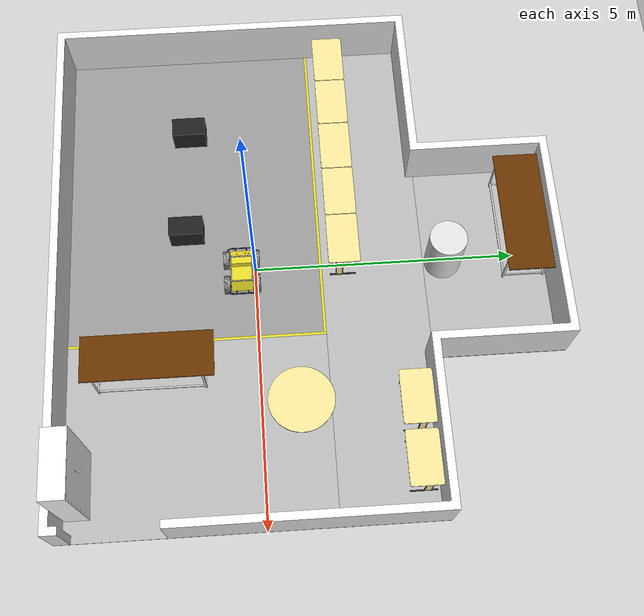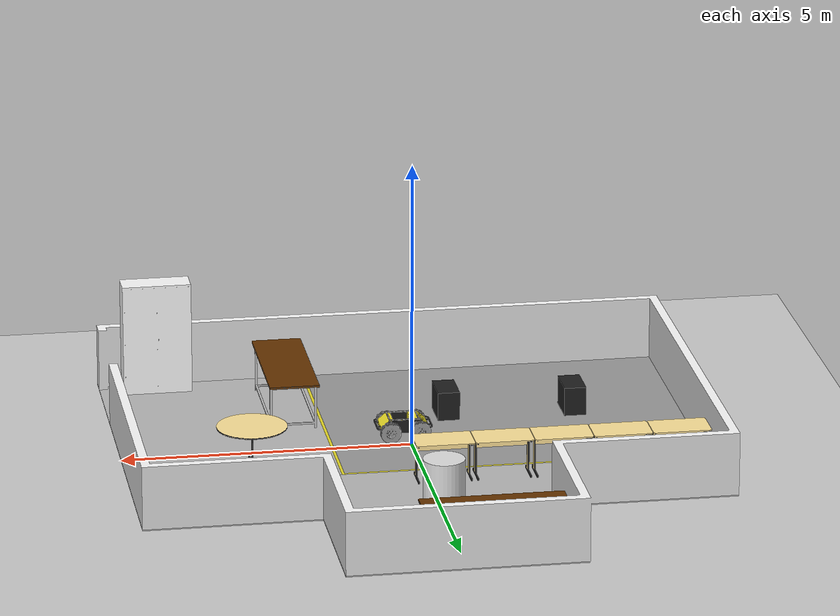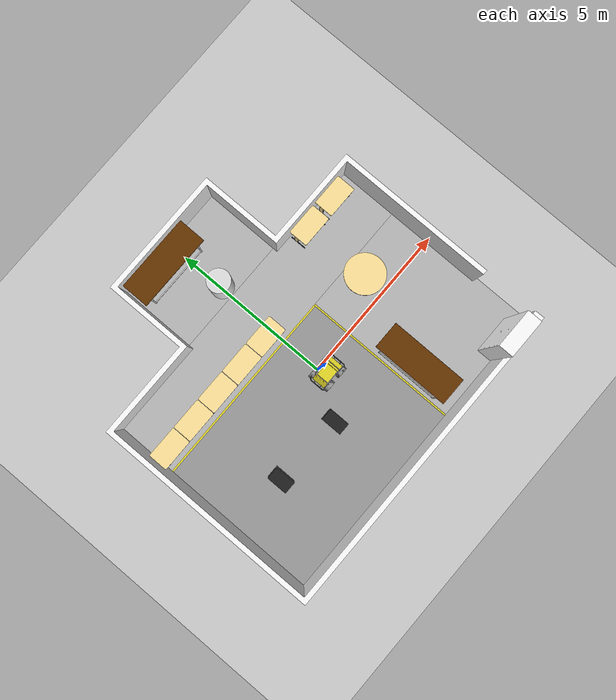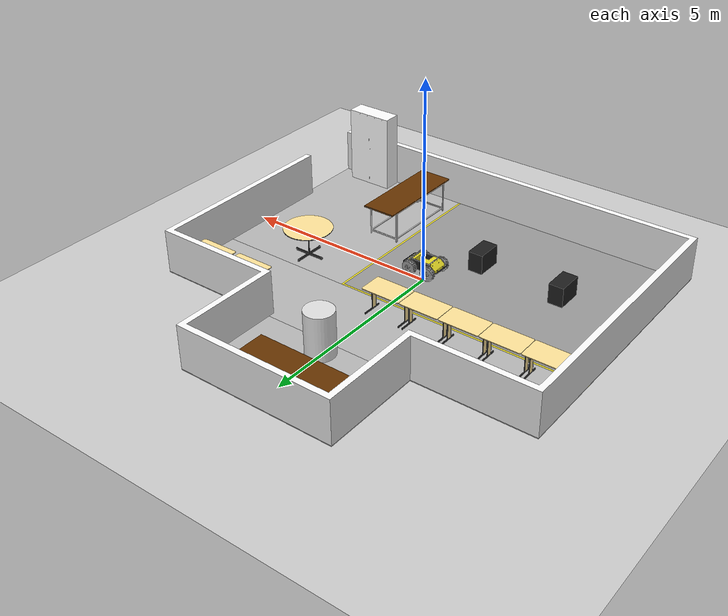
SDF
<sdf version="1.7">
 <world name="default">
  <light name="sun" type="directional">
   <cast_shadows>0</cast_shadows>
   <pose>0 0 10 0 -0 0</pose>
   <diffuse>0.8 0.8 0.8 1</diffuse>
   <specular>0.1 0.1 0.1 1</specular>
   <attenuation>
    <range>1000</range>
    <constant>0.9</constant>
    <linear>0.01</linear>
    <quadratic>0.001</quadratic>
   </attenuation>
   <direction>-0.5 0.5 -1</direction>
   <spot><inner_angle>0</inner_angle><outer_angle>0</outer_angle><falloff>0</falloff></spot>
  </light>
  <model name="ground_plane">
   <static>1</static>
   <link name="link">
    <collision name="collision">
     <geometry><plane><normal>0 0 1</normal><size>100 100</size></plane></geometry>
     <surface><friction><ode><mu>100</mu><mu2>50</mu2></ode></friction></surface>
    </collision>
    <visual name="visual">
     <cast_shadows>0</cast_shadows>
     <geometry><plane><normal>0 0 1</normal><size>100 100</size></plane></geometry>
     <material>
      <script><uri>file://media/materials/scripts/gazebo.material</uri><name>Gazebo/Grey</name></script>
     </material>
    </visual>
   </link>
  </model>
  <gravity>0 0 -9.8</gravity>
  <magnetic_field>6e-06 2.3e-05 -4.2e-05</magnetic_field>
  <atmosphere type="adiabatic"/>
  <physics name="default_physics" default="0" type="ode">
   <max_step_size>0.01</max_step_size>
   <real_time_factor>1</real_time_factor>
   <real_time_update_rate>100</real_time_update_rate>
  </physics>
  <scene><ambient>0.4 0.4 0.4 1</ambient><background>0.7 0.7 0.7 1</background><shadows>0</shadows></scene>
  <spherical_coordinates>
   <surface_model>EARTH_WGS84</surface_model>
   <latitude_deg>0</latitude_deg>
   <longitude_deg>0</longitude_deg>
   <elevation>0</elevation>
   <heading_deg>0</heading_deg>
  </spherical_coordinates>
  <model name="lar_floor">
   <pose>0 -0.25 0 0 -0 0</pose>
   <frame name="floor::__model__" attached_to="floor::floor">
    <pose relative_to="__model__">0 0 0 0 -0 0</pose>
   </frame>
   <link name="floor::floor">
    <pose relative_to="floor::__model__">0 0 0 0 -0 0</pose>
    <visual name="visual_1">
     <pose>3.2 -0.985 0.01 0 -0 0</pose>
     <geometry><box><size>3.6 5.03 0.02</size></box></geometry>
     <material>
      <script>
       <uri>model://lar_floor/materials/scripts/lar_floor.material</uri>
       <name>lar_floor/visual_1</name>
      </script>
     </material>
     <cast_shadows>0</cast_shadows>
    </visual>
    <visual name="visual_2">
     <pose>0 4.75 0.01 0 -0 0</pose>
     <geometry><box><size>4 2.5 0.02</size></box></geometry>
     <material>
      <script>
       <uri>model://lar_floor/materials/scripts/lar_floor.material</uri>
       <name>lar_floor/visual_2</name>
      </script>
     </material>
     <cast_shadows>0</cast_shadows>
    </visual>
    <visual name="visual_3">
     <pose>-1.825 -1.01 0.01 0 -0 0</pose>
     <geometry><box><size>6.35 4.98 0.02</size></box></geometry>
     <material>
      <script><uri>file://media/materials/scripts/gazebo.material</uri><name>Gazebo/Grey</name></script>
     </material>
     <cast_shadows>0</cast_shadows>
    </visual>
    <visual name="visual_4">
     <pose>1.375 -0.985 0.01 0 -0 0</pose>
     <geometry><box><size>0.05 5.03 0.02</size></box></geometry>
     <material>
      <script><uri>file://media/materials/scripts/gazebo.material</uri><name>Gazebo/DarkYellow</name></script>
     </material>
     <cast_shadows>0</cast_shadows>
    </visual>
    <visual name="visual_5">
     <pose>-1.825 1.505 0.01 0 -0 0</pose>
     <geometry><box><size>6.35 0.05 0.02</size></box></geometry>
     <material>
      <script><uri>file://media/materials/scripts/gazebo.material</uri><name>Gazebo/DarkYellow</name></script>
     </material>
     <cast_shadows>0</cast_shadows>
    </visual>
    <visual name="visual_6">
     <pose>0 2.515 0.01 0 -0 0</pose>
     <geometry><box><size>10 1.97 0.02</size></box></geometry>
     <material>
      <script>
       <uri>model://lar_floor/materials/scripts/lar_floor.material</uri>
       <name>lar_floor/visual_6</name>
      </script>
     </material>
     <cast_shadows>0</cast_shadows>
    </visual>
    <collision name="collision_1">
     <pose>0 0 0.01 0 -0 0</pose>
     <geometry><box><size>10 7 0.1</size></box></geometry>
    </collision>
    <collision name="collision_2">
     <pose>0 4.75 0.01 0 -0 0</pose>
     <geometry><box><size>4 2.5 0.1</size></box></geometry>
    </collision>
   </link>
   <static>1</static>
  </model>
  <model name="lar_walls">
   <pose>0 1 0 0 -0 0</pose>
   <frame name="walls::__model__" attached_to="walls::walls">
    <pose relative_to="__model__">0 0 0 0 -0 0</pose>
   </frame>
   <link name="walls::walls">
    <pose relative_to="walls::__model__">0 0 1.52 0 -0 0</pose>
    <inertial>
     <inertia><ixx>1</ixx><ixy>0</ixy><ixz>0</ixz><iyy>1</iyy><iyz>0</iyz><izz>1</izz></inertia>
     <mass>2000</mass>
    </inertial>
    <visual name="visual">
     <geometry><mesh><uri>model://lar_walls/meshes/lar_walls.dae</uri></mesh></geometry>
     <cast_shadows>0</cast_shadows>
     <material><shader type="vertex"><normal_map>__default__</normal_map></shader></material>
    </visual>
    <collision name="collisions">
     <geometry><mesh><uri>model://lar_walls/meshes/lar_walls.dae</uri></mesh></geometry>
     <surface>
      <friction>
       <ode><mu>1</mu><mu2>1</mu2><fdir1>0 0 0</fdir1><slip1>0</slip1><slip2>0</slip2></ode>
       <torsional>
        <coefficient>1</coefficient>
        <patch_radius>0</patch_radius>
        <surface_radius>0</surface_radius>
        <use_patch_radius>1</use_patch_radius>
        <ode><slip>0</slip></ode>
       </torsional>
      </friction>
      <bounce><restitution_coefficient>0</restitution_coefficient><threshold>1e+06</threshold></bounce>
      <contact>
       <collide_without_contact>0</collide_without_contact>
       <collide_without_contact_bitmask>1</collide_without_contact_bitmask>
       <collide_bitmask>1</collide_bitmask>
       <ode>
        <soft_cfm>0</soft_cfm>
        <soft_erp>0.2</soft_erp>
        <kp>1e+13</kp>
        <kd>1</kd>
        <max_vel>0.01</max_vel>
        <min_depth>0</min_depth>
       </ode>
       <bullet>
        <split_impulse>1</split_impulse>
        <split_impulse_penetration_threshold>-0.01</split_impulse_penetration_threshold>
        <soft_cfm>0</soft_cfm>
        <soft_erp>0.2</soft_erp>
        <kp>1e+13</kp>
        <kd>1</kd>
       </bullet>
      </contact>
     </surface>
    </collision>
   </link>
   <static>1</static>
  </model>
  <model name="lar_shelf">
   <pose>4 -3.35 0 0 -0 1.57068</pose>
   <frame name="shelf::__model__" attached_to="shelf::shelf">
    <pose relative_to="__model__">0 0 0 0 -0 0</pose>
   </frame>
   <link name="shelf::shelf">
    <pose relative_to="shelf::__model__">0 0 1.01 0 -0 0</pose>
    <inertial>
     <inertia><ixx>1</ixx><ixy>0</ixy><ixz>0</ixz><iyy>1</iyy><iyz>0</iyz><izz>1</izz></inertia>
     <mass>20</mass>
    </inertial>
    <visual name="visual">
     <geometry><mesh><uri>model://lar_shelf/meshes/lar_shelf.dae</uri></mesh></geometry>
     <cast_shadows>0</cast_shadows>
     <material>
      <lighting>1</lighting>
      <ambient>1 1 1 1</ambient>
      <diffuse>1 1 1 1</diffuse>
      <specular>1 1 1 1</specular>
      <emissive>0 0 0 1</emissive>
      <shader type="vertex"><normal_map>__default__</normal_map></shader>
     </material>
    </visual>
    <collision name="collisions">
     <geometry><box><size>0.454 1.2 1.98</size></box></geometry>
     <surface>
      <friction>
       <ode><mu>1</mu><mu2>1</mu2><fdir1>0 0 0</fdir1><slip1>0</slip1><slip2>0</slip2></ode>
       <torsional>
        <coefficient>1</coefficient>
        <patch_radius>0</patch_radius>
        <surface_radius>0</surface_radius>
        <use_patch_radius>1</use_patch_radius>
        <ode><slip>0</slip></ode>
       </torsional>
      </friction>
      <bounce><restitution_coefficient>0</restitution_coefficient><threshold>1e+06</threshold></bounce>
      <contact>
       <collide_without_contact>0</collide_without_contact>
       <collide_without_contact_bitmask>1</collide_without_contact_bitmask>
       <collide_bitmask>1</collide_bitmask>
       <ode>
        <soft_cfm>0</soft_cfm>
        <soft_erp>0.2</soft_erp>
        <kp>1e+13</kp>
        <kd>1</kd>
        <max_vel>0.01</max_vel>
        <min_depth>0</min_depth>
       </ode>
       <bullet>
        <split_impulse>1</split_impulse>
        <split_impulse_penetration_threshold>-0.01</split_impulse_penetration_threshold>
        <soft_cfm>0</soft_cfm>
        <soft_erp>0.2</soft_erp>
        <kp>1e+13</kp>
        <kd>1</kd>
       </bullet>
      </contact>
     </surface>
    </collision>
   </link>
   <static>1</static>
  </model>
  <model name="lar_table_great_0">
   <pose>1.9 -2 0 0 -0 0</pose>
   <frame name="great_table_0::__model__" attached_to="great_table_0::great_table">
    <pose relative_to="__model__">0 0 0 0 -0 0</pose>
   </frame>
   <link name="great_table_0::great_table">
    <pose relative_to="great_table_0::__model__">0 0 0.445 0 -0 0</pose>
    <inertial>
     <inertia><ixx>1</ixx><ixy>0</ixy><ixz>0</ixz><iyy>1</iyy><iyz>0</iyz><izz>1</izz></inertia>
     <mass>25</mass>
    </inertial>
    <visual name="visual">
     <geometry><mesh><uri>model://lar_table_great/meshes/lar_table_great.dae</uri></mesh></geometry>
     <cast_shadows>0</cast_shadows>
     <material><shader type="vertex"><normal_map>__default__</normal_map></shader></material>
    </visual>
    <collision name="collisions">
     <geometry><mesh><uri>model://lar_table_great/meshes/lar_table_great.dae</uri></mesh></geometry>
     <surface>
      <friction>
       <ode><mu>1</mu><mu2>1</mu2><fdir1>0 0 0</fdir1><slip1>0</slip1><slip2>0</slip2></ode>
       <torsional>
        <coefficient>1</coefficient>
        <patch_radius>0</patch_radius>
        <surface_radius>0</surface_radius>
        <use_patch_radius>1</use_patch_radius>
        <ode><slip>0</slip></ode>
       </torsional>
      </friction>
      <bounce><restitution_coefficient>0</restitution_coefficient><threshold>1e+06</threshold></bounce>
      <contact>
       <collide_without_contact>0</collide_without_contact>
       <collide_without_contact_bitmask>1</collide_without_contact_bitmask>
       <collide_bitmask>1</collide_bitmask>
       <ode>
        <soft_cfm>0</soft_cfm>
        <soft_erp>0.2</soft_erp>
        <kp>1e+13</kp>
        <kd>1</kd>
        <max_vel>0.01</max_vel>
        <min_depth>0</min_depth>
       </ode>
       <bullet>
        <split_impulse>1</split_impulse>
        <split_impulse_penetration_threshold>-0.01</split_impulse_penetration_threshold>
        <soft_cfm>0</soft_cfm>
        <soft_erp>0.2</soft_erp>
        <kp>1e+13</kp>
        <kd>1</kd>
       </bullet>
      </contact>
     </surface>
    </collision>
   </link>
   <static>1</static>
  </model>
  <model name="lar_table_great_1">
   <pose>-0.55 5.15 0 0 -0 1.5708</pose>
   <frame name="great_table_1::__model__" attached_to="great_table_1::great_table">
    <pose relative_to="__model__">0 0 0 0 -0 0</pose>
   </frame>
   <link name="great_table_1::great_table">
    <pose relative_to="great_table_1::__model__">0 0 0.445 0 -0 0</pose>
    <inertial>
     <inertia><ixx>1</ixx><ixy>0</ixy><ixz>0</ixz><iyy>1</iyy><iyz>0</iyz><izz>1</izz></inertia>
     <mass>25</mass>
    </inertial>
    <visual name="visual">
     <geometry><mesh><uri>model://lar_table_great/meshes/lar_table_great.dae</uri></mesh></geometry>
     <cast_shadows>0</cast_shadows>
     <material><shader type="vertex"><normal_map>__default__</normal_map></shader></material>
    </visual>
    <collision name="collisions">
     <geometry><mesh><uri>model://lar_table_great/meshes/lar_table_great.dae</uri></mesh></geometry>
     <surface>
      <friction>
       <ode><mu>1</mu><mu2>1</mu2><fdir1>0 0 0</fdir1><slip1>0</slip1><slip2>0</slip2></ode>
       <torsional>
        <coefficient>1</coefficient>
        <patch_radius>0</patch_radius>
        <surface_radius>0</surface_radius>
        <use_patch_radius>1</use_patch_radius>
        <ode><slip>0</slip></ode>
       </torsional>
      </friction>
      <bounce><restitution_coefficient>0</restitution_coefficient><threshold>1e+06</threshold></bounce>
      <contact>
       <collide_without_contact>0</collide_without_contact>
       <collide_without_contact_bitmask>1</collide_without_contact_bitmask>
       <collide_bitmask>1</collide_bitmask>
       <ode>
        <soft_cfm>0</soft_cfm>
        <soft_erp>0.2</soft_erp>
        <kp>1e+13</kp>
        <kd>1</kd>
        <max_vel>0.01</max_vel>
        <min_depth>0</min_depth>
       </ode>
       <bullet>
        <split_impulse>1</split_impulse>
        <split_impulse_penetration_threshold>-0.01</split_impulse_penetration_threshold>
        <soft_cfm>0</soft_cfm>
        <soft_erp>0.2</soft_erp>
        <kp>1e+13</kp>
        <kd>1</kd>
       </bullet>
      </contact>
     </surface>
    </collision>
   </link>
   <static>1</static>
  </model>
  <model name="lar_table_pc_0">
   <pose>-4.3 1.68 0 0 -0 0</pose>
   <frame name="pc_table_0::__model__" attached_to="pc_table_0::pc_table">
    <pose relative_to="__model__">0 0 0 0 -0 0</pose>
   </frame>
   <link name="pc_table_0::pc_table">
    <pose relative_to="pc_table_0::__model__">0 0 0.37 0 -0 0</pose>
    <inertial>
     <inertia><ixx>1</ixx><ixy>0</ixy><ixz>0</ixz><iyy>1</iyy><iyz>0</iyz><izz>1</izz></inertia>
     <mass>12</mass>
    </inertial>
    <visual name="visual">
     <geometry><mesh><uri>model://lar_table_pc/meshes/lar_table_pc.dae</uri></mesh></geometry>
     <cast_shadows>0</cast_shadows>
     <material><shader type="vertex"><normal_map>__default__</normal_map></shader></material>
    </visual>
    <collision name="collisions">
     <geometry><mesh><uri>model://lar_table_pc/meshes/lar_table_pc.dae</uri></mesh></geometry>
     <surface>
      <friction>
       <ode><mu>1</mu><mu2>1</mu2><fdir1>0 0 0</fdir1><slip1>0</slip1><slip2>0</slip2></ode>
       <torsional>
        <coefficient>1</coefficient>
        <patch_radius>0</patch_radius>
        <surface_radius>0</surface_radius>
        <use_patch_radius>1</use_patch_radius>
        <ode><slip>0</slip></ode>
       </torsional>
      </friction>
      <bounce><restitution_coefficient>0</restitution_coefficient><threshold>1e+06</threshold></bounce>
      <contact>
       <collide_without_contact>0</collide_without_contact>
       <collide_without_contact_bitmask>1</collide_without_contact_bitmask>
       <collide_bitmask>1</collide_bitmask>
       <ode>
        <soft_cfm>0</soft_cfm>
        <soft_erp>0.2</soft_erp>
        <kp>1e+13</kp>
        <kd>1</kd>
        <max_vel>0.01</max_vel>
        <min_depth>0</min_depth>
       </ode>
       <bullet>
        <split_impulse>1</split_impulse>
        <split_impulse_penetration_threshold>-0.01</split_impulse_penetration_threshold>
        <soft_cfm>0</soft_cfm>
        <soft_erp>0.2</soft_erp>
        <kp>1e+13</kp>
        <kd>1</kd>
       </bullet>
      </contact>
     </surface>
    </collision>
   </link>
   <static>1</static>
  </model>
  <model name="lar_table_pc_1">
   <pose>-3.29 1.68 0 0 -0 0</pose>
   <frame name="pc_table_1::__model__" attached_to="pc_table_1::pc_table">
    <pose relative_to="__model__">0 0 0 0 -0 0</pose>
   </frame>
   <link name="pc_table_1::pc_table">
    <pose relative_to="pc_table_1::__model__">0 0 0.37 0 -0 0</pose>
    <inertial>
     <inertia><ixx>1</ixx><ixy>0</ixy><ixz>0</ixz><iyy>1</iyy><iyz>0</iyz><izz>1</izz></inertia>
     <mass>12</mass>
    </inertial>
    <visual name="visual">
     <geometry><mesh><uri>model://lar_table_pc/meshes/lar_table_pc.dae</uri></mesh></geometry>
     <cast_shadows>0</cast_shadows>
     <material><shader type="vertex"><normal_map>__default__</normal_map></shader></material>
    </visual>
    <collision name="collisions">
     <geometry><mesh><uri>model://lar_table_pc/meshes/lar_table_pc.dae</uri></mesh></geometry>
     <surface>
      <friction>
       <ode><mu>1</mu><mu2>1</mu2><fdir1>0 0 0</fdir1><slip1>0</slip1><slip2>0</slip2></ode>
       <torsional>
        <coefficient>1</coefficient>
        <patch_radius>0</patch_radius>
        <surface_radius>0</surface_radius>
        <use_patch_radius>1</use_patch_radius>
        <ode><slip>0</slip></ode>
       </torsional>
      </friction>
      <bounce><restitution_coefficient>0</restitution_coefficient><threshold>1e+06</threshold></bounce>
      <contact>
       <collide_without_contact>0</collide_without_contact>
       <collide_without_contact_bitmask>1</collide_without_contact_bitmask>
       <collide_bitmask>1</collide_bitmask>
       <ode>
        <soft_cfm>0</soft_cfm>
        <soft_erp>0.2</soft_erp>
        <kp>1e+13</kp>
        <kd>1</kd>
        <max_vel>0.01</max_vel>
        <min_depth>0</min_depth>
       </ode>
       <bullet>
        <split_impulse>1</split_impulse>
        <split_impulse_penetration_threshold>-0.01</split_impulse_penetration_threshold>
        <soft_cfm>0</soft_cfm>
        <soft_erp>0.2</soft_erp>
        <kp>1e+13</kp>
        <kd>1</kd>
       </bullet>
      </contact>
     </surface>
    </collision>
   </link>
   <static>1</static>
  </model>
  <model name="lar_table_pc_2">
   <pose>-2.28 1.68 0 0 -0 0</pose>
   <frame name="pc_table_2::__model__" attached_to="pc_table_2::pc_table">
    <pose relative_to="__model__">0 0 0 0 -0 0</pose>
   </frame>
   <link name="pc_table_2::pc_table">
    <pose relative_to="pc_table_2::__model__">0 0 0.37 0 -0 0</pose>
    <inertial>
     <inertia><ixx>1</ixx><ixy>0</ixy><ixz>0</ixz><iyy>1</iyy><iyz>0</iyz><izz>1</izz></inertia>
     <mass>12</mass>
    </inertial>
    <visual name="visual">
     <geometry><mesh><uri>model://lar_table_pc/meshes/lar_table_pc.dae</uri></mesh></geometry>
     <cast_shadows>0</cast_shadows>
     <material><shader type="vertex"><normal_map>__default__</normal_map></shader></material>
    </visual>
    <collision name="collisions">
     <geometry><mesh><uri>model://lar_table_pc/meshes/lar_table_pc.dae</uri></mesh></geometry>
     <surface>
      <friction>
       <ode><mu>1</mu><mu2>1</mu2><fdir1>0 0 0</fdir1><slip1>0</slip1><slip2>0</slip2></ode>
       <torsional>
        <coefficient>1</coefficient>
        <patch_radius>0</patch_radius>
        <surface_radius>0</surface_radius>
        <use_patch_radius>1</use_patch_radius>
        <ode><slip>0</slip></ode>
       </torsional>
      </friction>
      <bounce><restitution_coefficient>0</restitution_coefficient><threshold>1e+06</threshold></bounce>
      <contact>
       <collide_without_contact>0</collide_without_contact>
       <collide_without_contact_bitmask>1</collide_without_contact_bitmask>
       <collide_bitmask>1</collide_bitmask>
       <ode>
        <soft_cfm>0</soft_cfm>
        <soft_erp>0.2</soft_erp>
        <kp>1e+13</kp>
        <kd>1</kd>
        <max_vel>0.01</max_vel>
        <min_depth>0</min_depth>
       </ode>
       <bullet>
        <split_impulse>1</split_impulse>
        <split_impulse_penetration_threshold>-0.01</split_impulse_penetration_threshold>
        <soft_cfm>0</soft_cfm>
        <soft_erp>0.2</soft_erp>
        <kp>1e+13</kp>
        <kd>1</kd>
       </bullet>
      </contact>
     </surface>
    </collision>
   </link>
   <static>1</static>
  </model>
  <model name="lar_table_pc_3">
   <pose>-1.27 1.68 0 0 -0 0</pose>
   <frame name="pc_table_3::__model__" attached_to="pc_table_3::pc_table">
    <pose relative_to="__model__">0 0 0 0 -0 0</pose>
   </frame>
   <link name="pc_table_3::pc_table">
    <pose relative_to="pc_table_3::__model__">0 0 0.37 0 -0 0</pose>
    <inertial>
     <inertia><ixx>1</ixx><ixy>0</ixy><ixz>0</ixz><iyy>1</iyy><iyz>0</iyz><izz>1</izz></inertia>
     <mass>12</mass>
    </inertial>
    <visual name="visual">
     <geometry><mesh><uri>model://lar_table_pc/meshes/lar_table_pc.dae</uri></mesh></geometry>
     <cast_shadows>0</cast_shadows>
     <material><shader type="vertex"><normal_map>__default__</normal_map></shader></material>
    </visual>
    <collision name="collisions">
     <geometry><mesh><uri>model://lar_table_pc/meshes/lar_table_pc.dae</uri></mesh></geometry>
     <surface>
      <friction>
       <ode><mu>1</mu><mu2>1</mu2><fdir1>0 0 0</fdir1><slip1>0</slip1><slip2>0</slip2></ode>
       <torsional>
        <coefficient>1</coefficient>
        <patch_radius>0</patch_radius>
        <surface_radius>0</surface_radius>
        <use_patch_radius>1</use_patch_radius>
        <ode><slip>0</slip></ode>
       </torsional>
      </friction>
      <bounce><restitution_coefficient>0</restitution_coefficient><threshold>1e+06</threshold></bounce>
      <contact>
       <collide_without_contact>0</collide_without_contact>
       <collide_without_contact_bitmask>1</collide_without_contact_bitmask>
       <collide_bitmask>1</collide_bitmask>
       <ode>
        <soft_cfm>0</soft_cfm>
        <soft_erp>0.2</soft_erp>
        <kp>1e+13</kp>
        <kd>1</kd>
        <max_vel>0.01</max_vel>
        <min_depth>0</min_depth>
       </ode>
       <bullet>
        <split_impulse>1</split_impulse>
        <split_impulse_penetration_threshold>-0.01</split_impulse_penetration_threshold>
        <soft_cfm>0</soft_cfm>
        <soft_erp>0.2</soft_erp>
        <kp>1e+13</kp>
        <kd>1</kd>
       </bullet>
      </contact>
     </surface>
    </collision>
   </link>
   <static>1</static>
  </model>
  <model name="lar_table_pc_4">
   <pose>-0.26 1.68 0 0 -0 0</pose>
   <frame name="pc_table_4::__model__" attached_to="pc_table_4::pc_table">
    <pose relative_to="__model__">0 0 0 0 -0 0</pose>
   </frame>
   <link name="pc_table_4::pc_table">
    <pose relative_to="pc_table_4::__model__">0 0 0.37 0 -0 0</pose>
    <inertial>
     <inertia><ixx>1</ixx><ixy>0</ixy><ixz>0</ixz><iyy>1</iyy><iyz>0</iyz><izz>1</izz></inertia>
     <mass>12</mass>
    </inertial>
    <visual name="visual">
     <geometry><mesh><uri>model://lar_table_pc/meshes/lar_table_pc.dae</uri></mesh></geometry>
     <cast_shadows>0</cast_shadows>
     <material><shader type="vertex"><normal_map>__default__</normal_map></shader></material>
    </visual>
    <collision name="collisions">
     <geometry><mesh><uri>model://lar_table_pc/meshes/lar_table_pc.dae</uri></mesh></geometry>
     <surface>
      <friction>
       <ode><mu>1</mu><mu2>1</mu2><fdir1>0 0 0</fdir1><slip1>0</slip1><slip2>0</slip2></ode>
       <torsional>
        <coefficient>1</coefficient>
        <patch_radius>0</patch_radius>
        <surface_radius>0</surface_radius>
        <use_patch_radius>1</use_patch_radius>
        <ode><slip>0</slip></ode>
       </torsional>
      </friction>
      <bounce><restitution_coefficient>0</restitution_coefficient><threshold>1e+06</threshold></bounce>
      <contact>
       <collide_without_contact>0</collide_without_contact>
       <collide_without_contact_bitmask>1</collide_without_contact_bitmask>
       <collide_bitmask>1</collide_bitmask>
       <ode>
        <soft_cfm>0</soft_cfm>
        <soft_erp>0.2</soft_erp>
        <kp>1e+13</kp>
        <kd>1</kd>
        <max_vel>0.01</max_vel>
        <min_depth>0</min_depth>
       </ode>
       <bullet>
        <split_impulse>1</split_impulse>
        <split_impulse_penetration_threshold>-0.01</split_impulse_penetration_threshold>
        <soft_cfm>0</soft_cfm>
        <soft_erp>0.2</soft_erp>
        <kp>1e+13</kp>
        <kd>1</kd>
       </bullet>
      </contact>
     </surface>
    </collision>
   </link>
   <static>1</static>
  </model>
  <model name="lar_table_pc_5">
   <pose>4 2.8 0 0 0 -3.14159</pose>
   <frame name="pc_table_5::__model__" attached_to="pc_table_5::pc_table">
    <pose relative_to="__model__">0 0 0 0 -0 0</pose>
   </frame>
   <link name="pc_table_5::pc_table">
    <pose relative_to="pc_table_5::__model__">0 0 0.37 0 -0 0</pose>
    <inertial>
     <inertia><ixx>1</ixx><ixy>0</ixy><ixz>0</ixz><iyy>1</iyy><iyz>0</iyz><izz>1</izz></inertia>
     <mass>12</mass>
    </inertial>
    <visual name="visual">
     <geometry><mesh><uri>model://lar_table_pc/meshes/lar_table_pc.dae</uri></mesh></geometry>
     <cast_shadows>0</cast_shadows>
     <material><shader type="vertex"><normal_map>__default__</normal_map></shader></material>
    </visual>
    <collision name="collisions">
     <geometry><mesh><uri>model://lar_table_pc/meshes/lar_table_pc.dae</uri></mesh></geometry>
     <surface>
      <friction>
       <ode><mu>1</mu><mu2>1</mu2><fdir1>0 0 0</fdir1><slip1>0</slip1><slip2>0</slip2></ode>
       <torsional>
        <coefficient>1</coefficient>
        <patch_radius>0</patch_radius>
        <surface_radius>0</surface_radius>
        <use_patch_radius>1</use_patch_radius>
        <ode><slip>0</slip></ode>
       </torsional>
      </friction>
      <bounce><restitution_coefficient>0</restitution_coefficient><threshold>1e+06</threshold></bounce>
      <contact>
       <collide_without_contact>0</collide_without_contact>
       <collide_without_contact_bitmask>1</collide_without_contact_bitmask>
       <collide_bitmask>1</collide_bitmask>
       <ode>
        <soft_cfm>0</soft_cfm>
        <soft_erp>0.2</soft_erp>
        <kp>1e+13</kp>
        <kd>1</kd>
        <max_vel>0.01</max_vel>
        <min_depth>0</min_depth>
       </ode>
       <bullet>
        <split_impulse>1</split_impulse>
        <split_impulse_penetration_threshold>-0.01</split_impulse_penetration_threshold>
        <soft_cfm>0</soft_cfm>
        <soft_erp>0.2</soft_erp>
        <kp>1e+13</kp>
        <kd>1</kd>
       </bullet>
      </contact>
     </surface>
    </collision>
   </link>
   <static>1</static>
  </model>
  <model name="lar_table_pc_6">
   <pose>2.9 2.8 0 0 -0 3.14159</pose>
   <frame name="pc_table_6::__model__" attached_to="pc_table_6::pc_table">
    <pose relative_to="__model__">0 0 0 0 -0 0</pose>
   </frame>
   <link name="pc_table_6::pc_table">
    <pose relative_to="pc_table_6::__model__">0 0 0.37 0 -0 0</pose>
    <inertial>
     <inertia><ixx>1</ixx><ixy>0</ixy><ixz>0</ixz><iyy>1</iyy><iyz>0</iyz><izz>1</izz></inertia>
     <mass>12</mass>
    </inertial>
    <visual name="visual">
     <geometry><mesh><uri>model://lar_table_pc/meshes/lar_table_pc.dae</uri></mesh></geometry>
     <cast_shadows>0</cast_shadows>
     <material><shader type="vertex"><normal_map>__default__</normal_map></shader></material>
    </visual>
    <collision name="collisions">
     <geometry><mesh><uri>model://lar_table_pc/meshes/lar_table_pc.dae</uri></mesh></geometry>
     <surface>
      <friction>
       <ode><mu>1</mu><mu2>1</mu2><fdir1>0 0 0</fdir1><slip1>0</slip1><slip2>0</slip2></ode>
       <torsional>
        <coefficient>1</coefficient>
        <patch_radius>0</patch_radius>
        <surface_radius>0</surface_radius>
        <use_patch_radius>1</use_patch_radius>
        <ode><slip>0</slip></ode>
       </torsional>
      </friction>
      <bounce><restitution_coefficient>0</restitution_coefficient><threshold>1e+06</threshold></bounce>
      <contact>
       <collide_without_contact>0</collide_without_contact>
       <collide_without_contact_bitmask>1</collide_without_contact_bitmask>
       <collide_bitmask>1</collide_bitmask>
       <ode>
        <soft_cfm>0</soft_cfm>
        <soft_erp>0.2</soft_erp>
        <kp>1e+13</kp>
        <kd>1</kd>
        <max_vel>0.01</max_vel>
        <min_depth>0</min_depth>
       </ode>
       <bullet>
        <split_impulse>1</split_impulse>
        <split_impulse_penetration_threshold>-0.01</split_impulse_penetration_threshold>
        <soft_cfm>0</soft_cfm>
        <soft_erp>0.2</soft_erp>
        <kp>1e+13</kp>
        <kd>1</kd>
       </bullet>
      </contact>
     </surface>
    </collision>
   </link>
   <static>1</static>
  </model>
  <model name="lar_table_circular">
   <pose>2.84873 0.721151 0 0 -0 0</pose>
   <frame name="circular_table::__model__" attached_to="circular_table::circular_table">
    <pose relative_to="__model__">0 0 0 0 -0 0</pose>
   </frame>
   <link name="circular_table::circular_table">
    <pose relative_to="circular_table::__model__">0 0 0.388 0 -0 0</pose>
    <inertial>
     <inertia><ixx>1</ixx><ixy>0</ixy><ixz>0</ixz><iyy>1</iyy><iyz>0</iyz><izz>1</izz></inertia>
     <mass>5</mass>
    </inertial>
    <visual name="visual">
     <geometry><mesh><uri>model://lar_table_circular/meshes/lar_table_circular.dae</uri></mesh></geometry>
     <cast_shadows>0</cast_shadows>
     <material><shader type="vertex"><normal_map>__default__</normal_map></shader></material>
    </visual>
    <collision name="collisions">
     <geometry><mesh><uri>model://lar_table_circular/meshes/lar_table_circular.dae</uri></mesh></geometry>
     <surface>
      <friction>
       <ode><mu>1</mu><mu2>1</mu2><fdir1>0 0 0</fdir1><slip1>0</slip1><slip2>0</slip2></ode>
       <torsional>
        <coefficient>1</coefficient>
        <patch_radius>0</patch_radius>
        <surface_radius>0</surface_radius>
        <use_patch_radius>1</use_patch_radius>
        <ode><slip>0</slip></ode>
       </torsional>
      </friction>
      <bounce><restitution_coefficient>0</restitution_coefficient><threshold>1e+06</threshold></bounce>
      <contact>
       <collide_without_contact>0</collide_without_contact>
       <collide_without_contact_bitmask>1</collide_without_contact_bitmask>
       <collide_bitmask>1</collide_bitmask>
       <ode>
        <soft_cfm>0</soft_cfm>
        <soft_erp>0.2</soft_erp>
        <kp>1e+13</kp>
        <kd>1</kd>
        <max_vel>0.01</max_vel>
        <min_depth>0</min_depth>
       </ode>
       <bullet>
        <split_impulse>1</split_impulse>
        <split_impulse_penetration_threshold>-0.01</split_impulse_penetration_threshold>
        <soft_cfm>0</soft_cfm>
        <soft_erp>0.2</soft_erp>
        <kp>1e+13</kp>
        <kd>1</kd>
       </bullet>
      </contact>
     </surface>
    </collision>
   </link>
   <static>1</static>
  </model>
  <model name="box_0">
   <pose>-0.8 -1.3 0 0 -0 1.5708</pose>
   <frame name="box_0::__model__" attached_to="box_0::link">
    <pose relative_to="__model__">0 0 0 0 -0 0</pose>
   </frame>
   <static>1</static>
   <link name="box_0::link">
    <pose relative_to="box_0::__model__">0 0 0.28 0 -0 0</pose>
    <collision name="collision"><geometry><box><size>0.65 0.38 0.5</size></box></geometry></collision>
    <visual name="visual">
     <cast_shadows>0</cast_shadows>
     <geometry><box><size>0.65 0.38 0.5</size></box></geometry>
     <material>
      <script><uri>file://media/materials/scripts/gazebo.material</uri><name>Gazebo/Black</name></script>
     </material>
    </visual>
   </link>
  </model>
  <model name="box_1">
   <pose>-3 -1.2 0 0 -0 1.5708</pose>
   <frame name="box_1::__model__" attached_to="box_1::link">
    <pose relative_to="__model__">0 0 0 0 -0 0</pose>
   </frame>
   <static>1</static>
   <link name="box_1::link">
    <pose relative_to="box_1::__model__">0 0 0.28 0 -0 0</pose>
    <collision name="collision"><geometry><box><size>0.65 0.38 0.5</size></box></geometry></collision>
    <visual name="visual">
     <cast_shadows>0</cast_shadows>
     <geometry><box><size>0.65 0.38 0.5</size></box></geometry>
     <material>
      <script><uri>file://media/materials/scripts/gazebo.material</uri><name>Gazebo/Black</name></script>
     </material>
    </visual>
   </link>
  </model>
  <model name="husky">
   <pose>0.11511 -0.257841 0.202377 6e-06 -0.001502 0.001059</pose>
   <link name="base_link">
    <collision name="collision">
     <pose>0 0 0.1 0 -0 0</pose>
     <geometry><box><size>1.0074 0.5709 0.2675</size></box></geometry>
    </collision>
    <inertial>
     <mass>33.855</mass>
     <pose>-0.085613 -0.00084 0.238145 0 -0 0</pose>
     <inertia>
      <ixx>2.2343</ixx>
      <ixy>-0.023642</ixy>
      <ixz>0.275174</ixz>
      <iyy>3.42518</iyy>
      <iyz>0.00239624</iyz>
      <izz>2.1241</izz>
     </inertia>
    </inertial>
    <visual name="base">
     <geometry><mesh><uri>model://husky/meshes/base_link.stl</uri></mesh></geometry>
     <material><script><name>Gazebo/FlatBlack</name><uri>__default__</uri></script></material>
    </visual>
    <visual name="top_plate">
     <geometry><mesh><uri>model://husky/meshes/top_plate.stl</uri></mesh></geometry>
     <material><script><name>Gazebo/Yellow</name><uri>__default__</uri></script></material>
    </visual>
    <visual name="front_bumper">
     <pose>0.47 0 0.091 0 -0 0</pose>
     <geometry><mesh><uri>model://husky/meshes/bumper.stl</uri></mesh></geometry>
     <material><script><name>Gazebo/FlatBlack</name><uri>__default__</uri></script></material>
    </visual>
    <visual name="rear_bumper">
     <pose>-0.47 0 0.091 0 -0 3.141</pose>
     <geometry><mesh><uri>model://husky/meshes/bumper.stl</uri></mesh></geometry>
     <material><script><name>Gazebo/FlatBlack</name><uri>__default__</uri></script></material>
    </visual>
    <visual name="user_rail">
     <pose>0.272 0 0.245 0 -0 0</pose>
     <geometry><mesh><uri>model://husky/meshes/user_rail.stl</uri></mesh></geometry>
     <material><script><name>Gazebo/Grey</name><uri>__default__</uri></script></material>
    </visual>
   </link>
   <link name="back_left_wheel">
    <pose>-0.256 0.285475 0.035 0 -0 0</pose>
    <inertial>
     <mass>2.6357</mass>
     <inertia>
      <ixx>0.0246688</ixx>
      <ixy>0</ixy>
      <ixz>0</ixz>
      <iyy>0.0246688</iyy>
      <iyz>0</iyz>
      <izz>0.0441058</izz>
     </inertia>
    </inertial>
    <collision name="back_left_wheel_collision">
     <pose>0 0 0 -1.5707 0 0</pose>
     <geometry><cylinder><radius>0.17775</radius><length>0.1143</length></cylinder></geometry>
     <surface>
      <friction><ode><mu>100000</mu><mu2>100000</mu2><slip1>0</slip1><slip2>0</slip2></ode></friction>
     </surface>
    </collision>
    <visual name="back_left_wheel">
     <pose>0 0 0 -3.14159 0 0</pose>
     <geometry><mesh><uri>model://husky/meshes/wheel.stl</uri></mesh></geometry>
     <material><script><name>Gazebo/Grey</name><uri>__default__</uri></script></material>
    </visual>
   </link>
   <joint name="back_left_joint" type="revolute">
    <parent>base_link</parent>
    <child>back_left_wheel</child>
    <axis>
     <xyz expressed_in="__model__">0 1 0</xyz>
     <limit><lower>-1e+16</lower><upper>1e+16</upper></limit>
     <dynamics><spring_reference>0</spring_reference><spring_stiffness>0</spring_stiffness></dynamics>
    </axis>
    <physics><ode><limit><cfm>0</cfm><erp>0.9</erp></limit></ode></physics>
   </joint>
   <link name="back_right_wheel">
    <pose>-0.256 -0.285475 0.035 0 -0 0</pose>
    <inertial>
     <mass>2.6357</mass>
     <inertia>
      <ixx>0.0246688</ixx>
      <ixy>0</ixy>
      <ixz>0</ixz>
      <iyy>0.0246688</iyy>
      <iyz>0</iyz>
      <izz>0.0441058</izz>
     </inertia>
    </inertial>
    <collision name="back_right_wheel_collision">
     <pose>0 0 0 -1.5707 0 0</pose>
     <geometry><cylinder><radius>0.17775</radius><length>0.1143</length></cylinder></geometry>
     <surface>
      <friction><ode><mu>100000</mu><mu2>100000</mu2><slip1>0</slip1><slip2>0</slip2></ode></friction>
     </surface>
    </collision>
    <visual name="back_right_wheel">
     <pose>0 0 0 -3.14159 0 0</pose>
     <geometry><mesh><uri>model://husky/meshes/wheel.stl</uri></mesh></geometry>
     <material><script><name>Gazebo/Grey</name><uri>__default__</uri></script></material>
    </visual>
   </link>
   <joint name="back_right_joint" type="revolute">
    <parent>base_link</parent>
    <child>back_right_wheel</child>
    <axis>
     <xyz expressed_in="__model__">0 1 0</xyz>
     <limit><lower>-1e+16</lower><upper>1e+16</upper></limit>
     <dynamics><spring_reference>0</spring_reference><spring_stiffness>0</spring_stiffness></dynamics>
    </axis>
    <physics><ode><limit><cfm>0</cfm><erp>0.9</erp></limit></ode></physics>
   </joint>
   <link name="front_left_wheel">
    <pose>0.256 0.285475 0.035 0 -0 0</pose>
    <inertial>
     <mass>2.6357</mass>
     <inertia>
      <ixx>0.0246688</ixx>
      <ixy>0</ixy>
      <ixz>0</ixz>
      <iyy>0.0246688</iyy>
      <iyz>0</iyz>
      <izz>0.0441058</izz>
     </inertia>
    </inertial>
    <collision name="front_left_wheel_collision">
     <pose>0 0 0 -1.5707 0 0</pose>
     <geometry><cylinder><radius>0.17775</radius><length>0.1143</length></cylinder></geometry>
     <surface>
      <friction><ode><mu>100000</mu><mu2>100000</mu2><slip1>0</slip1><slip2>0</slip2></ode></friction>
     </surface>
    </collision>
    <visual name="front_left_wheel">
     <pose>0 0 0 -3.14159 0 0</pose>
     <geometry><mesh><uri>model://husky/meshes/wheel.stl</uri></mesh></geometry>
     <material><script><name>Gazebo/Grey</name><uri>__default__</uri></script></material>
    </visual>
   </link>
   <joint name="front_left_joint" type="revolute">
    <parent>base_link</parent>
    <child>front_left_wheel</child>
    <axis>
     <xyz expressed_in="__model__">0 1 0</xyz>
     <limit><lower>-1e+16</lower><upper>1e+16</upper></limit>
     <dynamics><spring_reference>0</spring_reference><spring_stiffness>0</spring_stiffness></dynamics>
    </axis>
    <physics><ode><limit><cfm>0</cfm><erp>0.9</erp></limit></ode></physics>
   </joint>
   <link name="front_right_wheel">
    <pose>0.256 -0.285475 0.035 0 -0 0</pose>
    <inertial>
     <mass>2.6357</mass>
     <inertia>
      <ixx>0.0246688</ixx>
      <ixy>0</ixy>
      <ixz>0</ixz>
      <iyy>0.0246688</iyy>
      <iyz>0</iyz>
      <izz>0.0441058</izz>
     </inertia>
    </inertial>
    <collision name="front_right_wheel_collision">
     <pose>0 0 0 -1.5707 0 0</pose>
     <geometry><cylinder><radius>0.17775</radius><length>0.1143</length></cylinder></geometry>
     <surface>
      <friction><ode><mu>100000</mu><mu2>100000</mu2><slip1>0</slip1><slip2>0</slip2></ode></friction>
     </surface>
    </collision>
    <visual name="front_right_wheel">
     <pose>0 0 0 -3.14159 0 0</pose>
     <geometry><mesh><uri>model://husky/meshes/wheel.stl</uri></mesh></geometry>
     <material><script><name>Gazebo/Grey</name><uri>__default__</uri></script></material>
    </visual>
   </link>
   <joint name="front_right_joint" type="revolute">
    <parent>base_link</parent>
    <child>front_right_wheel</child>
    <axis>
     <xyz expressed_in="__model__">0 1 0</xyz>
     <limit><lower>-1e+16</lower><upper>1e+16</upper></limit>
     <dynamics><spring_reference>0</spring_reference><spring_stiffness>0</spring_stiffness></dynamics>
    </axis>
    <physics><ode><limit><cfm>0</cfm><erp>0.9</erp></limit></ode></physics>
   </joint>
   <plugin name="husky_diff_controller" filename="libhusky_gazebo_plugins.so">
    <alwaysOn>1</alwaysOn>
    <updateRate>100.0</updateRate>
    <backLeftJoint>back_left_joint</backLeftJoint>
    <backRightJoint>back_right_joint</backRightJoint>
    <frontLeftJoint>front_left_joint</frontLeftJoint>
    <frontRightJoint>front_right_joint</frontRightJoint>
    <wheelSeparation>0.5709</wheelSeparation>
    <wheelDiameter>0.3555</wheelDiameter>
    <torque>35</torque>
   </plugin>
  </model>
 </world>
</sdf>
